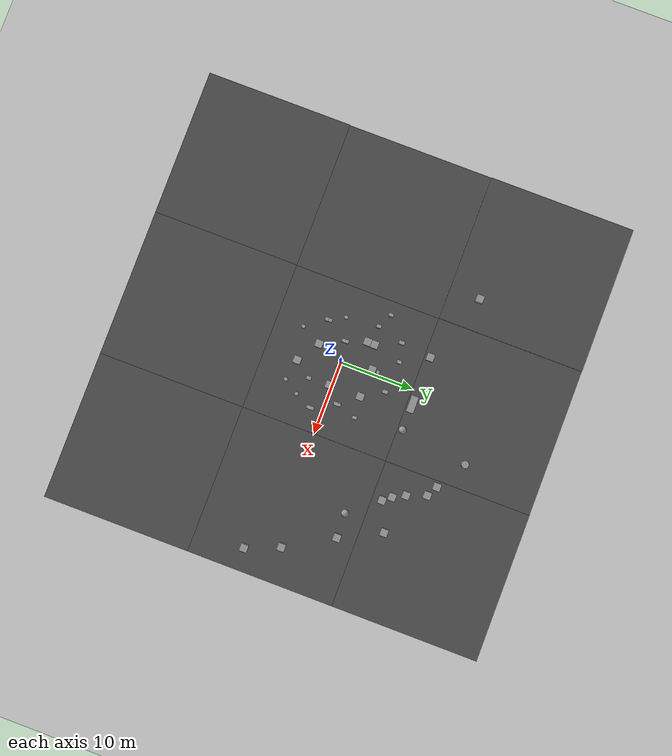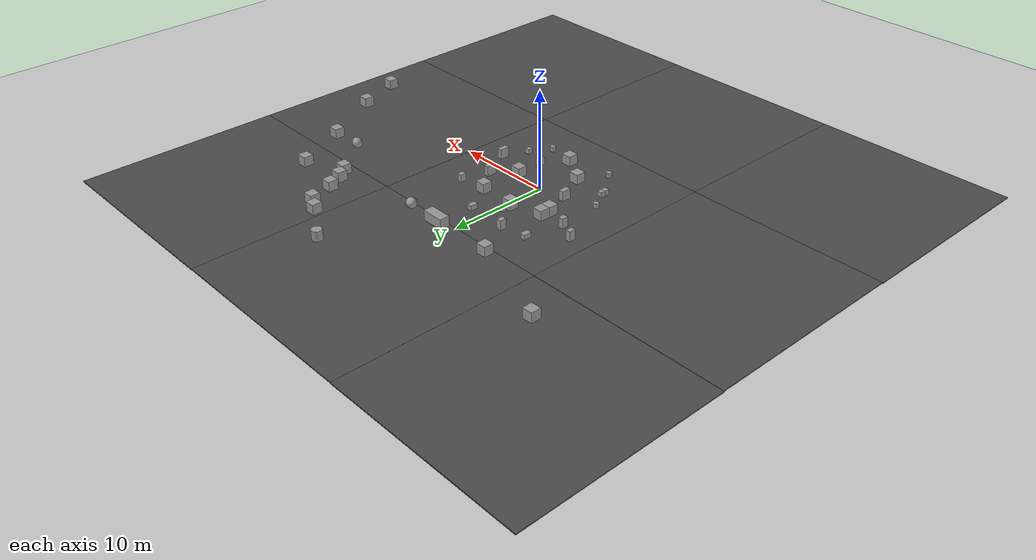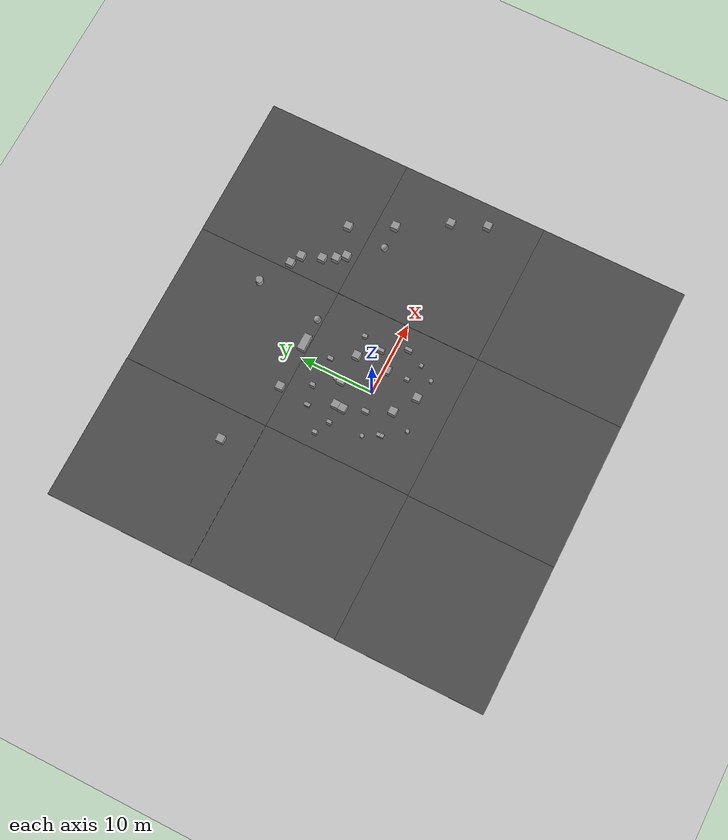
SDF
<sdf version="1.7">
 <world name="default">
  <model name="ground_plane">
   <static>1</static>
   <link name="link">
    <collision name="collision">
     <geometry><plane><normal>0 0 1</normal><size>100 100</size></plane></geometry>
     <surface>
      <contact><collide_bitmask>65535</collide_bitmask></contact>
      <friction><ode><mu>100</mu><mu2>50</mu2></ode></friction>
     </surface>
    </collision>
    <visual name="visual">
     <cast_shadows>0</cast_shadows>
     <geometry><plane><normal>0 0 1</normal><size>100 100</size></plane></geometry>
     <material>
      <script><uri>file://media/materials/scripts/gazebo.material</uri><name>Gazebo/Grey</name></script>
     </material>
    </visual>
   </link>
  </model>
  <model name="asphalt_plane">
   <static>1</static>
   <link name="link">
    <collision name="collision"><geometry><box><size>20 20 0.1</size></box></geometry></collision>
    <visual name="visual">
     <cast_shadows>0</cast_shadows>
     <geometry><box><size>20 20 0.1</size></box></geometry>
     <material>
      <script>
       <uri>model://asphalt_plane/materials/scripts</uri>
       <uri>model://asphalt_plane/materials/textures</uri>
       <name>vrc/asphalt</name>
      </script>
     </material>
    </visual>
   </link>
   <pose>-0.014859 -0.026662 0 0 -0 0</pose>
  </model>
  <model name="asphalt_plane_clone">
   <static>1</static>
   <link name="link">
    <collision name="collision"><geometry><box><size>20 20 0.1</size></box></geometry></collision>
    <visual name="visual">
     <cast_shadows>0</cast_shadows>
     <geometry><box><size>20 20 0.1</size></box></geometry>
     <material>
      <script>
       <uri>model://asphalt_plane/materials/scripts</uri>
       <uri>model://asphalt_plane/materials/textures</uri>
       <name>vrc/asphalt</name>
      </script>
     </material>
    </visual>
   </link>
   <pose>20 0 0 0 -0 0</pose>
  </model>
  <model name="asphalt_plane_clone_0">
   <static>1</static>
   <link name="link">
    <collision name="collision"><geometry><box><size>20 20 0.1</size></box></geometry></collision>
    <visual name="visual">
     <cast_shadows>0</cast_shadows>
     <geometry><box><size>20 20 0.1</size></box></geometry>
     <material>
      <script>
       <uri>model://asphalt_plane/materials/scripts</uri>
       <uri>model://asphalt_plane/materials/textures</uri>
       <name>vrc/asphalt</name>
      </script>
     </material>
    </visual>
   </link>
   <pose>20 -20 0 0 -0 0</pose>
  </model>
  <model name="asphalt_plane_clone_1">
   <static>1</static>
   <link name="link">
    <collision name="collision"><geometry><box><size>20 20 0.1</size></box></geometry></collision>
    <visual name="visual">
     <cast_shadows>0</cast_shadows>
     <geometry><box><size>20 20 0.1</size></box></geometry>
     <material>
      <script>
       <uri>model://asphalt_plane/materials/scripts</uri>
       <uri>model://asphalt_plane/materials/textures</uri>
       <name>vrc/asphalt</name>
      </script>
     </material>
    </visual>
   </link>
   <pose>0 -20 0 0 -0 0</pose>
  </model>
  <model name="asphalt_plane_clone_2">
   <static>1</static>
   <link name="link">
    <collision name="collision"><geometry><box><size>20 20 0.1</size></box></geometry></collision>
    <visual name="visual">
     <cast_shadows>0</cast_shadows>
     <geometry><box><size>20 20 0.1</size></box></geometry>
     <material>
      <script>
       <uri>model://asphalt_plane/materials/scripts</uri>
       <uri>model://asphalt_plane/materials/textures</uri>
       <name>vrc/asphalt</name>
      </script>
     </material>
    </visual>
   </link>
   <pose>-20 -20 0 0 -0 0</pose>
  </model>
  <model name="asphalt_plane_clone_3">
   <static>1</static>
   <link name="link">
    <collision name="collision"><geometry><box><size>20 20 0.1</size></box></geometry></collision>
    <visual name="visual">
     <cast_shadows>0</cast_shadows>
     <geometry><box><size>20 20 0.1</size></box></geometry>
     <material>
      <script>
       <uri>model://asphalt_plane/materials/scripts</uri>
       <uri>model://asphalt_plane/materials/textures</uri>
       <name>vrc/asphalt</name>
      </script>
     </material>
    </visual>
   </link>
   <pose>-19.9436 -0.028987 0 0 -0 0</pose>
  </model>
  <model name="asphalt_plane_clone_4">
   <static>1</static>
   <link name="link">
    <collision name="collision"><geometry><box><size>20 20 0.1</size></box></geometry></collision>
    <visual name="visual">
     <cast_shadows>0</cast_shadows>
     <geometry><box><size>20 20 0.1</size></box></geometry>
     <material>
      <script>
       <uri>model://asphalt_plane/materials/scripts</uri>
       <uri>model://asphalt_plane/materials/textures</uri>
       <name>vrc/asphalt</name>
      </script>
     </material>
    </visual>
   </link>
   <pose>-20 20 0 0 -0 0</pose>
  </model>
  <model name="asphalt_plane_clone_5">
   <static>1</static>
   <link name="link">
    <collision name="collision"><geometry><box><size>20 20 0.1</size></box></geometry></collision>
    <visual name="visual">
     <cast_shadows>0</cast_shadows>
     <geometry><box><size>20 20 0.1</size></box></geometry>
     <material>
      <script>
       <uri>model://asphalt_plane/materials/scripts</uri>
       <uri>model://asphalt_plane/materials/textures</uri>
       <name>vrc/asphalt</name>
      </script>
     </material>
    </visual>
   </link>
   <pose>0.007354 19.9731 0 0 -0 0</pose>
  </model>
  <model name="asphalt_plane_clone_6">
   <static>1</static>
   <link name="link">
    <collision name="collision"><geometry><box><size>20 20 0.1</size></box></geometry></collision>
    <visual name="visual">
     <cast_shadows>0</cast_shadows>
     <geometry><box><size>20 20 0.1</size></box></geometry>
     <material>
      <script>
       <uri>model://asphalt_plane/materials/scripts</uri>
       <uri>model://asphalt_plane/materials/textures</uri>
       <name>vrc/asphalt</name>
      </script>
     </material>
    </visual>
   </link>
   <pose>20 20 0 0 -0 0</pose>
  </model>
  <model name="unit_box">
   <pose>3.3249 3.92528 0.55 -0 -0 -1e-06</pose>
   <link name="link">
    <inertial>
     <mass>1</mass>
     <inertia>
      <ixx>0.166667</ixx>
      <ixy>0</ixy>
      <ixz>0</ixz>
      <iyy>0.166667</iyy>
      <iyz>0</iyz>
      <izz>0.166667</izz>
     </inertia>
    </inertial>
    <collision name="collision"><geometry><box><size>1 1 1</size></box></geometry></collision>
    <visual name="visual">
     <geometry><box><size>1 1 1</size></box></geometry>
     <material>
      <script><name>Gazebo/Grey</name><uri>file://media/materials/scripts/gazebo.material</uri></script>
     </material>
    </visual>
   </link>
  </model>
  <model name="unit_cylinder_clone_3">
   <pose>-0.494179 5.00003 0.294835 0 -0 0.002273</pose>
   <link name="link">
    <inertial>
     <mass>1</mass>
     <inertia><ixx>0.145833</ixx><ixy>0</ixy><ixz>0</ixz><iyy>0.145833</iyy><iyz>0</iyz><izz>0.125</izz></inertia>
    </inertial>
    <collision name="collision">
     <geometry><cylinder><radius>0.264047</radius><length>0.48967</length></cylinder></geometry>
    </collision>
    <visual name="visual">
     <geometry><cylinder><radius>0.264047</radius><length>0.48967</length></cylinder></geometry>
     <material>
      <script><name>Gazebo/Grey</name><uri>file://media/materials/scripts/gazebo.material</uri></script>
     </material>
    </visual>
   </link>
  </model>
  <model name="unit_box_0_clone_1_clone_2">
   <pose>5.89538 -3.99875 0.301356 0 -0 1e-06</pose>
   <link name="link">
    <inertial>
     <mass>1</mass>
     <inertia>
      <ixx>0.166667</ixx>
      <ixy>0</ixy>
      <ixz>0</ixz>
      <iyy>0.166667</iyy>
      <iyz>0</iyz>
      <izz>0.166667</izz>
     </inertia>
    </inertial>
    <collision name="collision">
     <geometry><box><size>0.495294 0.467832 0.502712</size></box></geometry>
    </collision>
    <visual name="visual">
     <geometry><box><size>0.495294 0.467832 0.502712</size></box></geometry>
     <material>
      <script><name>Gazebo/Grey</name><uri>file://media/materials/scripts/gazebo.material</uri></script>
     </material>
    </visual>
   </link>
  </model>
  <model name="unit_box_1">
   <pose>1.73473 -5.44842 0.55 -0 -0 -1e-06</pose>
   <link name="link">
    <inertial>
     <mass>1</mass>
     <inertia>
      <ixx>0.166667</ixx>
      <ixy>0</ixy>
      <ixz>0</ixz>
      <iyy>0.166667</iyy>
      <iyz>0</iyz>
      <izz>0.166667</izz>
     </inertia>
    </inertial>
    <collision name="collision"><geometry><box><size>1 1 1</size></box></geometry></collision>
    <visual name="visual">
     <geometry><box><size>1 1 1</size></box></geometry>
     <material>
      <script><name>Gazebo/Grey</name><uri>file://media/materials/scripts/gazebo.material</uri></script>
     </material>
    </visual>
   </link>
  </model>
  <model name="unit_box_2">
   <pose>-1.24056 -3.52809 0.55 -0 -0 -1e-06</pose>
   <link name="link">
    <inertial>
     <mass>1</mass>
     <inertia>
      <ixx>0.166667</ixx>
      <ixy>0</ixy>
      <ixz>0</ixz>
      <iyy>0.166667</iyy>
      <iyz>0</iyz>
      <izz>0.166667</izz>
     </inertia>
    </inertial>
    <collision name="collision"><geometry><box><size>1 1 1</size></box></geometry></collision>
    <visual name="visual">
     <geometry><box><size>1 1 1</size></box></geometry>
     <material>
      <script><name>Gazebo/Grey</name><uri>file://media/materials/scripts/gazebo.material</uri></script>
     </material>
    </visual>
   </link>
  </model>
  <model name="unit_box_3_clone_1">
   <pose>6.15547 4.18849 0.422713 0 -0 0</pose>
   <link name="link">
    <inertial>
     <mass>1</mass>
     <inertia>
      <ixx>0.166667</ixx>
      <ixy>0</ixy>
      <ixz>0</ixz>
      <iyy>0.166667</iyy>
      <iyz>0</iyz>
      <izz>0.166667</izz>
     </inertia>
    </inertial>
    <collision name="collision">
     <geometry><box><size>0.473217 0.637104 0.745427</size></box></geometry>
    </collision>
    <visual name="visual">
     <geometry><box><size>0.473217 0.637104 0.745427</size></box></geometry>
     <material>
      <script><name>Gazebo/Grey</name><uri>file://media/materials/scripts/gazebo.material</uri></script>
     </material>
    </visual>
   </link>
  </model>
  <model name="unit_box_3_clone_2">
   <pose>-6.12917 2.98269 0.55 0 -0 0</pose>
   <link name="link">
    <inertial>
     <mass>1</mass>
     <inertia>
      <ixx>0.166667</ixx>
      <ixy>0</ixy>
      <ixz>0</ixz>
      <iyy>0.166667</iyy>
      <iyz>0</iyz>
      <izz>0.166667</izz>
     </inertia>
    </inertial>
    <collision name="collision"><geometry><box><size>0.473217 0.637104 1</size></box></geometry></collision>
    <visual name="visual">
     <geometry><box><size>0.473217 0.637104 1</size></box></geometry>
     <material>
      <script><name>Gazebo/Grey</name><uri>file://media/materials/scripts/gazebo.material</uri></script>
     </material>
    </visual>
   </link>
  </model>
  <model name="unit_box_5">
   <pose>1.8744 10.6312 0.549967 0 2.9e-05 0</pose>
   <link name="link">
    <inertial>
     <mass>1</mass>
     <inertia>
      <ixx>0.166667</ixx>
      <ixy>0</ixy>
      <ixz>0</ixz>
      <iyy>0.166667</iyy>
      <iyz>0</iyz>
      <izz>0.166667</izz>
     </inertia>
    </inertial>
    <collision name="collision"><geometry><box><size>2.25366 1 1</size></box></geometry></collision>
    <visual name="visual">
     <geometry><box><size>2.25366 1 1</size></box></geometry>
     <material>
      <script><name>Gazebo/Grey</name><uri>file://media/materials/scripts/gazebo.material</uri></script>
     </material>
    </visual>
   </link>
  </model>
  <model name="unit_sphere_clone">
   <link name="link">
    <inertial>
     <mass>1.41372</mass>
     <inertia>
      <ixx>0.141372</ixx>
      <ixy>0</ixy>
      <ixz>0</ixz>
      <iyy>0.141372</iyy>
      <iyz>0</iyz>
      <izz>0.141372</izz>
     </inertia>
    </inertial>
    <visual name="visual">
     <geometry><sphere><radius>0.5</radius></sphere></geometry>
     <material>
      <script><name>Gazebo/Grey</name><uri>file://media/materials/scripts/gazebo.material</uri></script>
      <shader type="pixel"><normal_map>__default__</normal_map></shader>
     </material>
    </visual>
    <collision name="collision">
     <geometry><sphere><radius>0.5</radius></sphere></geometry>
     <surface>
      <friction>
       <ode><mu>1</mu><mu2>1</mu2><fdir1>0 0 0</fdir1><slip1>0</slip1><slip2>0</slip2></ode>
       <torsional>
        <coefficient>1</coefficient>
        <patch_radius>0</patch_radius>
        <surface_radius>0</surface_radius>
        <use_patch_radius>1</use_patch_radius>
        <ode><slip>0</slip></ode>
       </torsional>
      </friction>
      <bounce><restitution_coefficient>0</restitution_coefficient><threshold>1e+06</threshold></bounce>
      <contact>
       <collide_without_contact>0</collide_without_contact>
       <collide_without_contact_bitmask>1</collide_without_contact_bitmask>
       <collide_bitmask>1</collide_bitmask>
       <ode>
        <soft_cfm>0</soft_cfm>
        <soft_erp>0.2</soft_erp>
        <kp>1e+13</kp>
        <kd>1</kd>
        <max_vel>0.01</max_vel>
        <min_depth>0</min_depth>
       </ode>
       <bullet>
        <split_impulse>1</split_impulse>
        <split_impulse_penetration_threshold>-0.01</split_impulse_penetration_threshold>
        <soft_cfm>0</soft_cfm>
        <soft_erp>0.2</soft_erp>
        <kp>1e+13</kp>
        <kd>1</kd>
       </bullet>
      </contact>
     </surface>
    </collision>
   </link>
   <static>0</static>
   <pose>5.44361 10.6261 0.55 0 -0 0</pose>
  </model>
  <model name="unit_cylinder_1">
   <pose>6.78697 19.7557 0.550005 1e-05 4e-06 -0.001364</pose>
   <link name="link">
    <inertial>
     <mass>1</mass>
     <inertia><ixx>0.145833</ixx><ixy>0</ixy><ixz>0</ixz><iyy>0.145833</iyy><iyz>0</iyz><izz>0.125</izz></inertia>
    </inertial>
    <collision name="collision">
     <geometry><cylinder><radius>0.5</radius><length>1</length></cylinder></geometry>
    </collision>
    <visual name="visual">
     <geometry><cylinder><radius>0.5</radius><length>1</length></cylinder></geometry>
     <material>
      <script><name>Gazebo/Grey</name><uri>file://media/materials/scripts/gazebo.material</uri></script>
     </material>
    </visual>
   </link>
  </model>
  <model name="unit_sphere_0">
   <pose>18.1703 7.41217 0.55 0 -0 0</pose>
   <link name="link">
    <inertial>
     <mass>1</mass>
     <inertia><ixx>0.1</ixx><ixy>0</ixy><ixz>0</ixz><iyy>0.1</iyy><iyz>0</iyz><izz>0.1</izz></inertia>
    </inertial>
    <collision name="collision"><geometry><sphere><radius>0.5</radius></sphere></geometry></collision>
    <visual name="visual">
     <geometry><sphere><radius>0.5</radius></sphere></geometry>
     <material>
      <script><name>Gazebo/Grey</name><uri>file://media/materials/scripts/gazebo.material</uri></script>
     </material>
    </visual>
   </link>
  </model>
  <model name="unit_box_6">
   <pose>25.1293 1.23622 0.55 -0 -0 -3e-06</pose>
   <link name="link">
    <inertial>
     <mass>1</mass>
     <inertia>
      <ixx>0.166667</ixx>
      <ixy>0</ixy>
      <ixz>0</ixz>
      <iyy>0.166667</iyy>
      <iyz>0</iyz>
      <izz>0.166667</izz>
     </inertia>
    </inertial>
    <collision name="collision"><geometry><box><size>1 1 1</size></box></geometry></collision>
    <visual name="visual">
     <geometry><box><size>1 1 1</size></box></geometry>
     <material>
      <script><name>Gazebo/Grey</name><uri>file://media/materials/scripts/gazebo.material</uri></script>
     </material>
    </visual>
   </link>
  </model>
  <model name="unit_box_4_clone_clone">
   <pose>13.2189 13.9745 0.55 -0 -0 -3e-06</pose>
   <link name="link">
    <inertial>
     <mass>1</mass>
     <inertia>
      <ixx>0.166667</ixx>
      <ixy>0</ixy>
      <ixz>0</ixz>
      <iyy>0.166667</iyy>
      <iyz>0</iyz>
      <izz>0.166667</izz>
     </inertia>
    </inertial>
    <collision name="collision"><geometry><box><size>1 1 1</size></box></geometry></collision>
    <visual name="visual">
     <geometry><box><size>1 1 1</size></box></geometry>
     <material>
      <script><name>Gazebo/Grey</name><uri>file://media/materials/scripts/gazebo.material</uri></script>
     </material>
    </visual>
   </link>
  </model>
  <model name="unit_box_4_clone_clone_0">
   <pose>10.7891 17.3515 0.55 -0 -0 -3e-06</pose>
   <link name="link">
    <inertial>
     <mass>1</mass>
     <inertia>
      <ixx>0.166667</ixx>
      <ixy>0</ixy>
      <ixz>0</ixz>
      <iyy>0.166667</iyy>
      <iyz>0</iyz>
      <izz>0.166667</izz>
     </inertia>
    </inertial>
    <collision name="collision"><geometry><box><size>1 1 1</size></box></geometry></collision>
    <visual name="visual">
     <geometry><box><size>1 1 1</size></box></geometry>
     <material>
      <script><name>Gazebo/Grey</name><uri>file://media/materials/scripts/gazebo.material</uri></script>
     </material>
    </visual>
   </link>
  </model>
  <model name="unit_box_4_clone_clone_1">
   <pose>21.4596 7.50864 0.55 -0 -0 -3e-06</pose>
   <link name="link">
    <inertial>
     <mass>1</mass>
     <inertia>
      <ixx>0.166667</ixx>
      <ixy>0</ixy>
      <ixz>0</ixz>
      <iyy>0.166667</iyy>
      <iyz>0</iyz>
      <izz>0.166667</izz>
     </inertia>
    </inertial>
    <collision name="collision"><geometry><box><size>1 1 1</size></box></geometry></collision>
    <visual name="visual">
     <geometry><box><size>1 1 1</size></box></geometry>
     <material>
      <script><name>Gazebo/Grey</name><uri>file://media/materials/scripts/gazebo.material</uri></script>
     </material>
    </visual>
   </link>
  </model>
  <model name="unit_box_4_clone_clone_2">
   <pose>18.6991 12.9908 0.55 -0 -0 -3e-06</pose>
   <link name="link">
    <inertial>
     <mass>1</mass>
     <inertia>
      <ixx>0.166667</ixx>
      <ixy>0</ixy>
      <ixz>0</ixz>
      <iyy>0.166667</iyy>
      <iyz>0</iyz>
      <izz>0.166667</izz>
     </inertia>
    </inertial>
    <collision name="collision"><geometry><box><size>1 1 1</size></box></geometry></collision>
    <visual name="visual">
     <geometry><box><size>1 1 1</size></box></geometry>
     <material>
      <script><name>Gazebo/Grey</name><uri>file://media/materials/scripts/gazebo.material</uri></script>
     </material>
    </visual>
   </link>
  </model>
  <model name="unit_box_4_clone_clone_3">
   <pose>26.913 -3.25658 0.55 -0 -0 -3e-06</pose>
   <link name="link">
    <inertial>
     <mass>1</mass>
     <inertia>
      <ixx>0.166667</ixx>
      <ixy>0</ixy>
      <ixz>0</ixz>
      <iyy>0.166667</iyy>
      <iyz>0</iyz>
      <izz>0.166667</izz>
     </inertia>
    </inertial>
    <collision name="collision"><geometry><box><size>1 1 1</size></box></geometry></collision>
    <visual name="visual">
     <geometry><box><size>1 1 1</size></box></geometry>
     <material>
      <script><name>Gazebo/Grey</name><uri>file://media/materials/scripts/gazebo.material</uri></script>
     </material>
    </visual>
   </link>
  </model>
  <model name="unit_box_2_clone">
   <pose>-3.709 2.31699 0.549996 7e-06 -0 -0.007224</pose>
   <link name="link">
    <inertial>
     <mass>1</mass>
     <inertia>
      <ixx>0.166667</ixx>
      <ixy>0</ixy>
      <ixz>0</ixz>
      <iyy>0.166667</iyy>
      <iyz>0</iyz>
      <izz>0.166667</izz>
     </inertia>
    </inertial>
    <collision name="collision"><geometry><box><size>1 1 1</size></box></geometry></collision>
    <visual name="visual">
     <geometry><box><size>1 1 1</size></box></geometry>
     <material>
      <script><name>Gazebo/Grey</name><uri>file://media/materials/scripts/gazebo.material</uri></script>
     </material>
    </visual>
   </link>
  </model>
  <model name="unit_box_0_clone_clone">
   <pose>-5.21709 6.55825 0.301351 1.2e-05 0 7e-06</pose>
   <link name="link">
    <inertial>
     <mass>1</mass>
     <inertia>
      <ixx>0.166667</ixx>
      <ixy>0</ixy>
      <ixz>0</ixz>
      <iyy>0.166667</iyy>
      <iyz>0</iyz>
      <izz>0.166667</izz>
     </inertia>
    </inertial>
    <collision name="collision">
     <geometry><box><size>0.495294 0.766084 0.502712</size></box></geometry>
    </collision>
    <visual name="visual">
     <geometry><box><size>0.495294 0.766084 0.502712</size></box></geometry>
     <material>
      <script><name>Gazebo/Grey</name><uri>file://media/materials/scripts/gazebo.material</uri></script>
     </material>
    </visual>
   </link>
  </model>
  <model name="unit_box_3_clone_0_clone">
   <pose>5.30107 1.46676 0.55 0 -0 0</pose>
   <link name="link">
    <inertial>
     <mass>1</mass>
     <inertia>
      <ixx>0.166667</ixx>
      <ixy>0</ixy>
      <ixz>0</ixz>
      <iyy>0.166667</iyy>
      <iyz>0</iyz>
      <izz>0.166667</izz>
     </inertia>
    </inertial>
    <collision name="collision"><geometry><box><size>0.473217 0.950732 1</size></box></geometry></collision>
    <visual name="visual">
     <geometry><box><size>0.473217 0.950732 1</size></box></geometry>
     <material>
      <script><name>Gazebo/Grey</name><uri>file://media/materials/scripts/gazebo.material</uri></script>
     </material>
    </visual>
   </link>
  </model>
  <model name="unit_box_2_clone_0">
   <pose>-0.521108 4.14238 0.55 -0 -0 -1e-06</pose>
   <link name="link">
    <inertial>
     <mass>1</mass>
     <inertia>
      <ixx>0.166667</ixx>
      <ixy>0</ixy>
      <ixz>0</ixz>
      <iyy>0.166667</iyy>
      <iyz>0</iyz>
      <izz>0.166667</izz>
     </inertia>
    </inertial>
    <collision name="collision"><geometry><box><size>1 1 1</size></box></geometry></collision>
    <visual name="visual">
     <geometry><box><size>1 1 1</size></box></geometry>
     <material>
      <script><name>Gazebo/Grey</name><uri>file://media/materials/scripts/gazebo.material</uri></script>
     </material>
    </visual>
   </link>
  </model>
  <model name="unit_box_3_clone_0_clone_0">
   <pose>-2.77968 -0.427653 0.55 0 -0 0</pose>
   <link name="link">
    <inertial>
     <mass>1</mass>
     <inertia>
      <ixx>0.166667</ixx>
      <ixy>0</ixy>
      <ixz>0</ixz>
      <iyy>0.166667</iyy>
      <iyz>0</iyz>
      <izz>0.166667</izz>
     </inertia>
    </inertial>
    <collision name="collision"><geometry><box><size>0.473217 0.950731 1</size></box></geometry></collision>
    <visual name="visual">
     <geometry><box><size>0.473217 0.950731 1</size></box></geometry>
     <material>
      <script><name>Gazebo/Grey</name><uri>file://media/materials/scripts/gazebo.material</uri></script>
     </material>
    </visual>
   </link>
  </model>
  <model name="unit_box_1_clone_clone">
   <pose>3.30807 -0.378934 0.55 -0 -0 -3e-06</pose>
   <link name="link">
    <inertial>
     <mass>1</mass>
     <inertia>
      <ixx>0.166667</ixx>
      <ixy>0</ixy>
      <ixz>0</ixz>
      <iyy>0.166667</iyy>
      <iyz>0</iyz>
      <izz>0.166667</izz>
     </inertia>
    </inertial>
    <collision name="collision"><geometry><box><size>1 1 1</size></box></geometry></collision>
    <visual name="visual">
     <geometry><box><size>1 1 1</size></box></geometry>
     <material>
      <script><name>Gazebo/Grey</name><uri>file://media/materials/scripts/gazebo.material</uri></script>
     </material>
    </visual>
   </link>
  </model>
  <model name="unit_box_3_clone_clone">
   <pose>-2.69557 7.10878 0.55 0 -0 0</pose>
   <link name="link">
    <inertial>
     <mass>1</mass>
     <inertia>
      <ixx>0.166667</ixx>
      <ixy>0</ixy>
      <ixz>0</ixz>
      <iyy>0.166667</iyy>
      <iyz>0</iyz>
      <izz>0.166667</izz>
     </inertia>
    </inertial>
    <collision name="collision"><geometry><box><size>0.473217 0.637104 1</size></box></geometry></collision>
    <visual name="visual">
     <geometry><box><size>0.473217 0.637104 1</size></box></geometry>
     <material>
      <script><name>Gazebo/Grey</name><uri>file://media/materials/scripts/gazebo.material</uri></script>
     </material>
    </visual>
   </link>
  </model>
  <model name="unit_box_3_clone_0_clone_clone">
   <pose>6.96449 -1.65259 0.55 0 -0 0</pose>
   <link name="link">
    <inertial>
     <mass>1</mass>
     <inertia>
      <ixx>0.166667</ixx>
      <ixy>0</ixy>
      <ixz>0</ixz>
      <iyy>0.166667</iyy>
      <iyz>0</iyz>
      <izz>0.166667</izz>
     </inertia>
    </inertial>
    <collision name="collision"><geometry><box><size>0.473217 0.950732 1</size></box></geometry></collision>
    <visual name="visual">
     <geometry><box><size>0.473217 0.950732 1</size></box></geometry>
     <material>
      <script><name>Gazebo/Grey</name><uri>file://media/materials/scripts/gazebo.material</uri></script>
     </material>
    </visual>
   </link>
  </model>
  <model name="unit_cylinder_clone_12_clone">
   <pose>-5.78273 -1.44374 0.294835 0 -0 0.000846</pose>
   <link name="link">
    <inertial>
     <mass>1</mass>
     <inertia><ixx>0.145833</ixx><ixy>0</ixy><ixz>0</ixz><iyy>0.145833</iyy><iyz>0</iyz><izz>0.125</izz></inertia>
    </inertial>
    <collision name="collision">
     <geometry><cylinder><radius>0.264047</radius><length>0.48967</length></cylinder></geometry>
    </collision>
    <visual name="visual">
     <geometry><cylinder><radius>0.264047</radius><length>0.48967</length></cylinder></geometry>
     <material>
      <script><name>Gazebo/Grey</name><uri>file://media/materials/scripts/gazebo.material</uri></script>
     </material>
    </visual>
   </link>
  </model>
  <model name="unit_box_0_clone_1_clone_4_clone">
   <pose>-4.67957 -3.23498 0.301356 0 -0 0.000778</pose>
   <link name="link">
    <inertial>
     <mass>1</mass>
     <inertia>
      <ixx>0.166667</ixx>
      <ixy>0</ixy>
      <ixz>0</ixz>
      <iyy>0.166667</iyy>
      <iyz>0</iyz>
      <izz>0.166667</izz>
     </inertia>
    </inertial>
    <collision name="collision">
     <geometry><box><size>0.495294 0.467832 0.502712</size></box></geometry>
    </collision>
    <visual name="visual">
     <geometry><box><size>0.495294 0.467832 0.502712</size></box></geometry>
     <material>
      <script><name>Gazebo/Grey</name><uri>file://media/materials/scripts/gazebo.material</uri></script>
     </material>
    </visual>
   </link>
  </model>
  <model name="unit_box_0_clone_1_clone_4_clone_0">
   <pose>-4.66868 -3.7028 0.301356 0 -0 0.000778</pose>
   <link name="link">
    <inertial>
     <mass>1</mass>
     <inertia>
      <ixx>0.166667</ixx>
      <ixy>0</ixy>
      <ixz>0</ixz>
      <iyy>0.166667</iyy>
      <iyz>0</iyz>
      <izz>0.166667</izz>
     </inertia>
    </inertial>
    <collision name="collision">
     <geometry><box><size>0.495294 0.467832 0.502712</size></box></geometry>
    </collision>
    <visual name="visual">
     <geometry><box><size>0.495294 0.467832 0.502712</size></box></geometry>
     <material>
      <script><name>Gazebo/Grey</name><uri>file://media/materials/scripts/gazebo.material</uri></script>
     </material>
    </visual>
   </link>
  </model>
  <model name="unit_cylinder_clone_17_clone">
   <pose>-2.67447 -6.27153 0.294835 0 -0 0.000167</pose>
   <link name="link">
    <inertial>
     <mass>1</mass>
     <inertia><ixx>0.145833</ixx><ixy>0</ixy><ixz>0</ixz><iyy>0.145833</iyy><iyz>0</iyz><izz>0.125</izz></inertia>
    </inertial>
    <collision name="collision">
     <geometry><cylinder><radius>0.264047</radius><length>0.48967</length></cylinder></geometry>
    </collision>
    <visual name="visual">
     <geometry><cylinder><radius>0.264047</radius><length>0.48967</length></cylinder></geometry>
     <material>
      <script><name>Gazebo/Grey</name><uri>file://media/materials/scripts/gazebo.material</uri></script>
     </material>
    </visual>
   </link>
  </model>
  <model name="unit_box_3_clone_1_clone">
   <pose>3.41372 -3.20085 0.422713 0 -0 0</pose>
   <link name="link">
    <inertial>
     <mass>1</mass>
     <inertia>
      <ixx>0.166667</ixx>
      <ixy>0</ixy>
      <ixz>0</ixz>
      <iyy>0.166667</iyy>
      <iyz>0</iyz>
      <izz>0.166667</izz>
     </inertia>
    </inertial>
    <collision name="collision">
     <geometry><box><size>0.473217 0.637104 0.745427</size></box></geometry>
    </collision>
    <visual name="visual">
     <geometry><box><size>0.473217 0.637104 0.745427</size></box></geometry>
     <material>
      <script><name>Gazebo/Grey</name><uri>file://media/materials/scripts/gazebo.material</uri></script>
     </material>
    </visual>
   </link>
  </model>
  <model name="unit_cylinder_clone_15_clone">
   <pose>4.61061 -5.98036 0.294835 0 -0 0.001832</pose>
   <link name="link">
    <inertial>
     <mass>1</mass>
     <inertia><ixx>0.145833</ixx><ixy>0</ixy><ixz>0</ixz><iyy>0.145833</iyy><iyz>0</iyz><izz>0.125</izz></inertia>
    </inertial>
    <collision name="collision">
     <geometry><cylinder><radius>0.264047</radius><length>0.48967</length></cylinder></geometry>
    </collision>
    <visual name="visual">
     <geometry><cylinder><radius>0.264047</radius><length>0.48967</length></cylinder></geometry>
     <material>
      <script><name>Gazebo/Grey</name><uri>file://media/materials/scripts/gazebo.material</uri></script>
     </material>
    </visual>
   </link>
  </model>
  <model name="unit_box_2_clone_clone">
   <pose>-3.6781 3.31679 0.549996 7e-06 -0 -0.007224</pose>
   <link name="link">
    <inertial>
     <mass>1</mass>
     <inertia>
      <ixx>0.166667</ixx>
      <ixy>0</ixy>
      <ixz>0</ixz>
      <iyy>0.166667</iyy>
      <iyz>0</iyz>
      <izz>0.166667</izz>
     </inertia>
    </inertial>
    <collision name="collision"><geometry><box><size>1 1 1</size></box></geometry></collision>
    <visual name="visual">
     <geometry><box><size>1 1 1</size></box></geometry>
     <material>
      <script><name>Gazebo/Grey</name><uri>file://media/materials/scripts/gazebo.material</uri></script>
     </material>
    </visual>
   </link>
  </model>
  <model name="unit_box_3_clone_clone_clone">
   <pose>-8.08164 3.98378 0.55 0 -0 0</pose>
   <link name="link">
    <inertial>
     <mass>1</mass>
     <inertia>
      <ixx>0.166667</ixx>
      <ixy>0</ixy>
      <ixz>0</ixz>
      <iyy>0.166667</iyy>
      <iyz>0</iyz>
      <izz>0.166667</izz>
     </inertia>
    </inertial>
    <collision name="collision"><geometry><box><size>0.473217 0.637104 1</size></box></geometry></collision>
    <visual name="visual">
     <geometry><box><size>0.473217 0.637104 1</size></box></geometry>
     <material>
      <script><name>Gazebo/Grey</name><uri>file://media/materials/scripts/gazebo.material</uri></script>
     </material>
    </visual>
   </link>
  </model>
  <model name="unit_box_0_clone_clone_0">
   <pose>1.58019 6.77243 0.301356 0 -0 7e-06</pose>
   <link name="link">
    <inertial>
     <mass>1</mass>
     <inertia>
      <ixx>0.166667</ixx>
      <ixy>0</ixy>
      <ixz>0</ixz>
      <iyy>0.166667</iyy>
      <iyz>0</iyz>
      <izz>0.166667</izz>
     </inertia>
    </inertial>
    <collision name="collision">
     <geometry><box><size>0.495294 0.766084 0.502712</size></box></geometry>
    </collision>
    <visual name="visual">
     <geometry><box><size>0.495294 0.766084 0.502712</size></box></geometry>
     <material>
      <script><name>Gazebo/Grey</name><uri>file://media/materials/scripts/gazebo.material</uri></script>
     </material>
    </visual>
   </link>
  </model>
  <model name="unit_box_2_clone_0_clone_0_clone">
   <pose>-4.69198 10.6897 0.55 0 -0 0.013832</pose>
   <link name="link">
    <inertial>
     <mass>1</mass>
     <inertia>
      <ixx>0.166667</ixx>
      <ixy>0</ixy>
      <ixz>0</ixz>
      <iyy>0.166667</iyy>
      <iyz>0</iyz>
      <izz>0.166667</izz>
     </inertia>
    </inertial>
    <collision name="collision"><geometry><box><size>1 1 1</size></box></geometry></collision>
    <visual name="visual">
     <geometry><box><size>1 1 1</size></box></geometry>
     <material>
      <script><name>Gazebo/Grey</name><uri>file://media/materials/scripts/gazebo.material</uri></script>
     </material>
    </visual>
   </link>
  </model>
  <model name="unit_box_2_clone_0_clone_0_clone_clone">
   <pose>-14.1664 14.0915 0.549998 1e-06 4e-06 0.013832</pose>
   <link name="link">
    <inertial>
     <mass>1</mass>
     <inertia>
      <ixx>0.166667</ixx>
      <ixy>0</ixy>
      <ixz>0</ixz>
      <iyy>0.166667</iyy>
      <iyz>0</iyz>
      <izz>0.166667</izz>
     </inertia>
    </inertial>
    <collision name="collision"><geometry><box><size>1 1 1</size></box></geometry></collision>
    <visual name="visual">
     <geometry><box><size>1 1 1</size></box></geometry>
     <material>
      <script><name>Gazebo/Grey</name><uri>file://media/materials/scripts/gazebo.material</uri></script>
     </material>
    </visual>
   </link>
  </model>
  <model name="unit_box_4_clone_clone_2_clone">
   <pose>12.2506 16.5635 0.55 0 0 -3e-06</pose>
   <link name="link">
    <inertial>
     <mass>1</mass>
     <inertia>
      <ixx>0.166667</ixx>
      <ixy>0</ixy>
      <ixz>0</ixz>
      <iyy>0.166667</iyy>
      <iyz>0</iyz>
      <izz>0.166667</izz>
     </inertia>
    </inertial>
    <collision name="collision"><geometry><box><size>1 1 1</size></box></geometry></collision>
    <visual name="visual">
     <geometry><box><size>1 1 1</size></box></geometry>
     <material>
      <script><name>Gazebo/Grey</name><uri>file://media/materials/scripts/gazebo.material</uri></script>
     </material>
    </visual>
   </link>
  </model>
  <model name="unit_box_4_clone_clone_2_clone_0">
   <pose>14.0489 12.3678 0.55 0 0 -3e-06</pose>
   <link name="link">
    <inertial>
     <mass>1</mass>
     <inertia>
      <ixx>0.166667</ixx>
      <ixy>0</ixy>
      <ixz>0</ixz>
      <iyy>0.166667</iyy>
      <iyz>0</iyz>
      <izz>0.166667</izz>
     </inertia>
    </inertial>
    <collision name="collision"><geometry><box><size>1 1 1</size></box></geometry></collision>
    <visual name="visual">
     <geometry><box><size>1 1 1</size></box></geometry>
     <material>
      <script><name>Gazebo/Grey</name><uri>file://media/materials/scripts/gazebo.material</uri></script>
     </material>
    </visual>
   </link>
  </model>
  <model name="unit_box_4_clone_clone_2_clone_1">
   <pose>14.8996 11.288 0.55 -0 -0 -3e-06</pose>
   <link name="link">
    <inertial>
     <mass>1</mass>
     <inertia>
      <ixx>0.166667</ixx>
      <ixy>0</ixy>
      <ixz>0</ixz>
      <iyy>0.166667</iyy>
      <iyz>0</iyz>
      <izz>0.166667</izz>
     </inertia>
    </inertial>
    <collision name="collision"><geometry><box><size>1 1 1</size></box></geometry></collision>
    <visual name="visual">
     <geometry><box><size>1 1 1</size></box></geometry>
     <material>
      <script><name>Gazebo/Grey</name><uri>file://media/materials/scripts/gazebo.material</uri></script>
     </material>
    </visual>
   </link>
  </model>
 </world>
</sdf>
